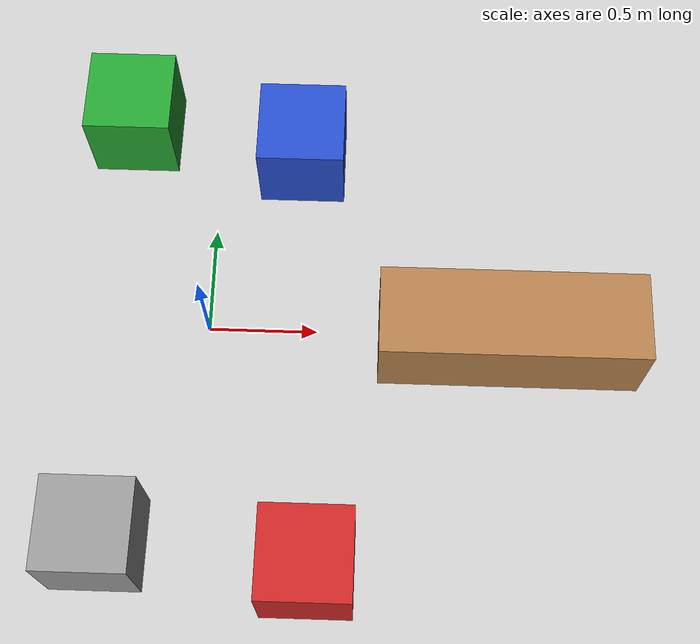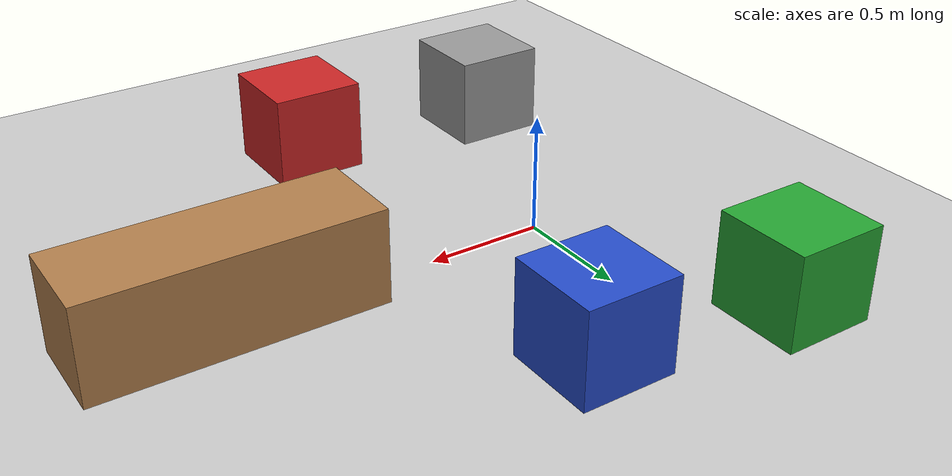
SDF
<sdf version="1.7">
 <world name="default">
  <light name="sun" type="directional">
   <pose>0 0 10 0 -0 0</pose>
   <diffuse>0.8 0.8 0.8 1</diffuse>
   <specular>0.2 0.2 0.2 1</specular>
   <attenuation>
    <range>1000</range>
    <constant>0.9</constant>
    <linear>0.01</linear>
    <quadratic>0.001</quadratic>
   </attenuation>
   <direction>-0.5 0.1 -0.9</direction>
   <spot><inner_angle>0</inner_angle><outer_angle>0</outer_angle><falloff>0</falloff></spot>
  </light>
  <model name="ground_plane">
   <static>1</static>
   <link name="link">
    <collision name="collision">
     <geometry><plane><normal>0 0 1</normal><size>100 100</size></plane></geometry>
     <surface>
      <contact><collide_bitmask>65535</collide_bitmask></contact>
      <friction><ode><mu>100</mu><mu2>50</mu2></ode></friction>
     </surface>
    </collision>
    <visual name="visual">
     <cast_shadows>0</cast_shadows>
     <geometry><plane><normal>0 0 1</normal><size>100 100</size></plane></geometry>
     <material>
      <script><uri>file://media/materials/scripts/gazebo.material</uri><name>Gazebo/Grey</name></script>
     </material>
    </visual>
   </link>
  </model>
  <model name="konveyor_masa">
   <pose>1.37569 -0.041389 0.2 0 -0 1.57</pose>
   <static>1</static>
   <link name="link">
    <collision name="collision"><geometry><box><size>0.4 1.18284 0.4</size></box></geometry></collision>
    <visual name="visual">
     <geometry><box><size>0.4 1.18284 0.4</size></box></geometry>
     <material><script><name>Gazebo/Wood</name><uri>__default__</uri></script></material>
    </visual>
   </link>
  </model>
  <model name="kutu_kirmizi">
   <pose>0.506312 -1.1128 0.2 0 -0 0</pose>
   <static>1</static>
   <link name="link">
    <collision name="collision"><geometry><box><size>0.4 0.4 0.4</size></box></geometry></collision>
    <visual name="visual">
     <geometry><box><size>0.4 0.4 0.4</size></box></geometry>
     <material><script><name>Gazebo/Red</name><uri>__default__</uri></script></material>
    </visual>
   </link>
  </model>
  <model name="kutu_mavi">
   <pose>0.4 0.889541 0.2 0 -0 0</pose>
   <static>1</static>
   <link name="link">
    <collision name="collision"><geometry><box><size>0.4 0.4 0.4</size></box></geometry></collision>
    <visual name="visual">
     <geometry><box><size>0.4 0.4 0.4</size></box></geometry>
     <material><script><name>Gazebo/Blue</name><uri>__default__</uri></script></material>
    </visual>
   </link>
  </model>
  <model name="kutu_yesil">
   <pose>-0.414282 1.03417 0.2 0 -0 0</pose>
   <static>1</static>
   <link name="link">
    <collision name="collision"><geometry><box><size>0.4 0.4 0.4</size></box></geometry></collision>
    <visual name="visual">
     <geometry><box><size>0.4 0.4 0.4</size></box></geometry>
     <material><script><name>Gazebo/Green</name><uri>__default__</uri></script></material>
    </visual>
   </link>
  </model>
  <model name="kutu_gri">
   <pose>-0.4 -1.02226 0.2 0 -0 0</pose>
   <static>1</static>
   <link name="link">
    <collision name="collision"><geometry><box><size>0.4 0.4 0.4</size></box></geometry></collision>
    <visual name="visual">
     <geometry><box><size>0.4 0.4 0.4</size></box></geometry>
     <material><script><name>Gazebo/Grey</name><uri>__default__</uri></script></material>
    </visual>
   </link>
  </model>
  <gravity>0 0 -9.8</gravity>
  <magnetic_field>6e-06 2.3e-05 -4.2e-05</magnetic_field>
  <atmosphere type="adiabatic"/>
  <physics type="ode">
   <max_step_size>0.001</max_step_size>
   <real_time_factor>1</real_time_factor>
   <real_time_update_rate>1000</real_time_update_rate>
  </physics>
  <scene><ambient>0.4 0.4 0.4 1</ambient><background>0.7 0.7 0.7 1</background><shadows>1</shadows></scene>
  <spherical_coordinates>
   <surface_model>EARTH_WGS84</surface_model>
   <latitude_deg>0</latitude_deg>
   <longitude_deg>0</longitude_deg>
   <elevation>0</elevation>
   <heading_deg>0</heading_deg>
  </spherical_coordinates>
 </world>
</sdf>
